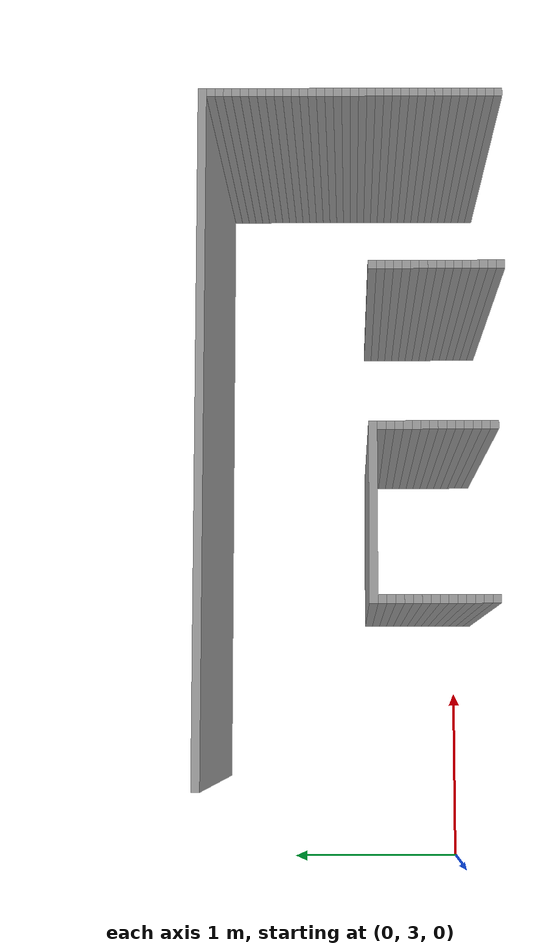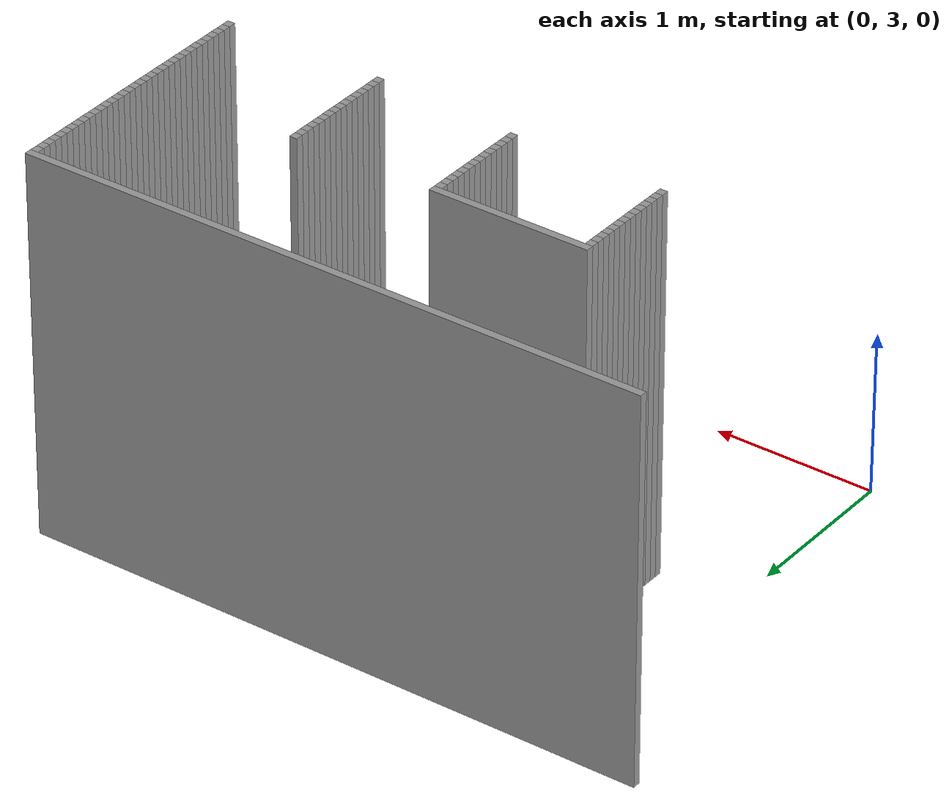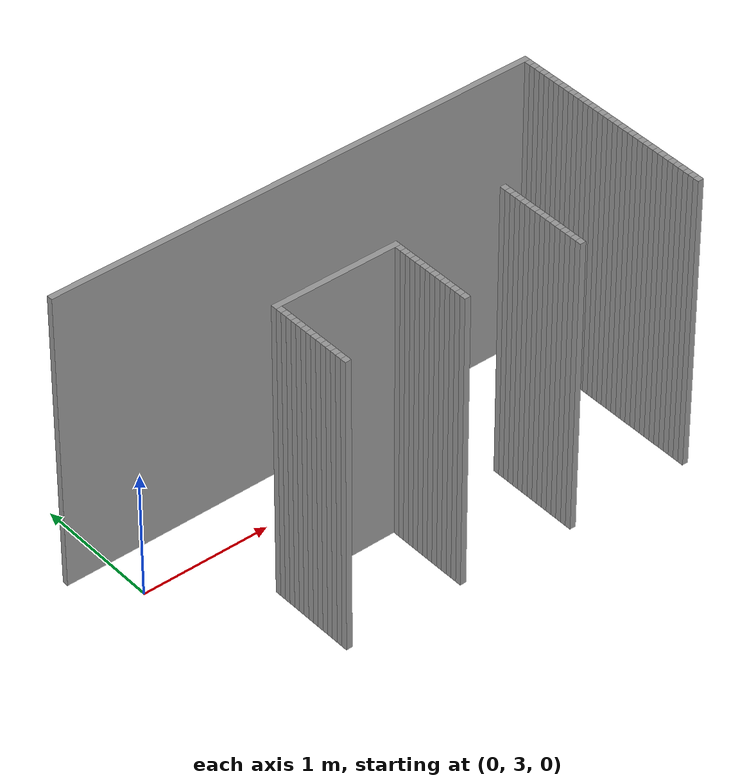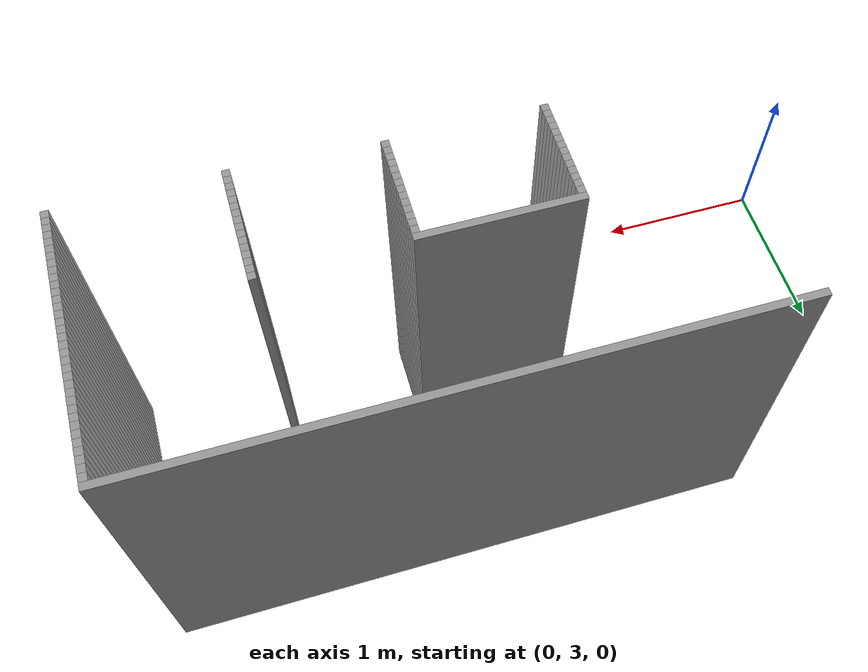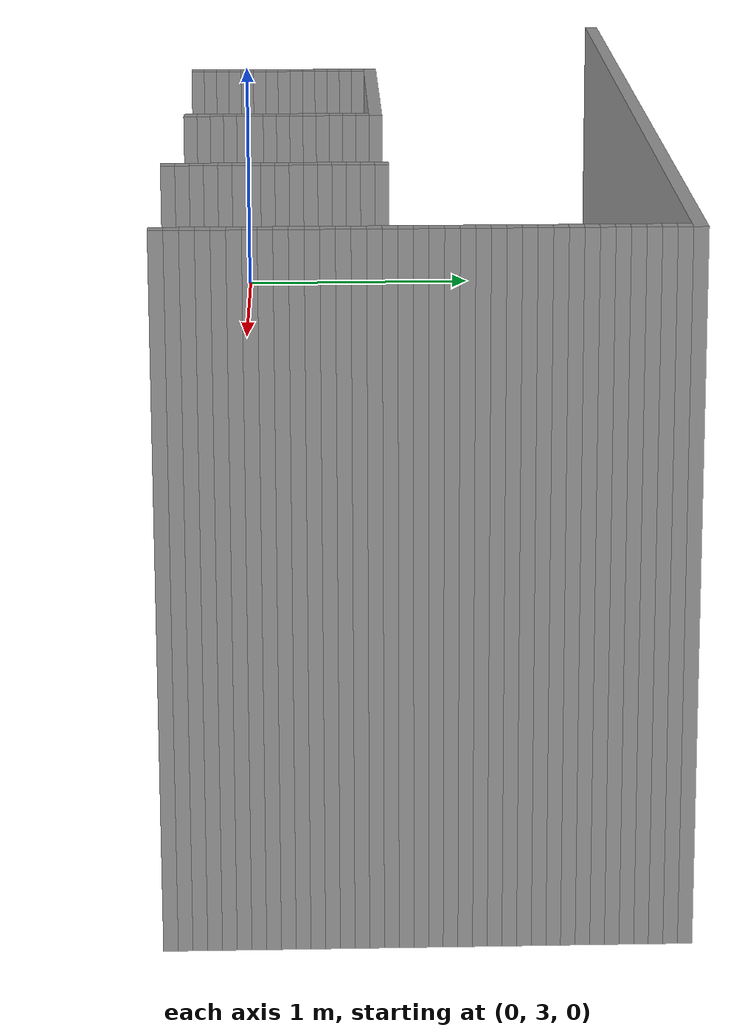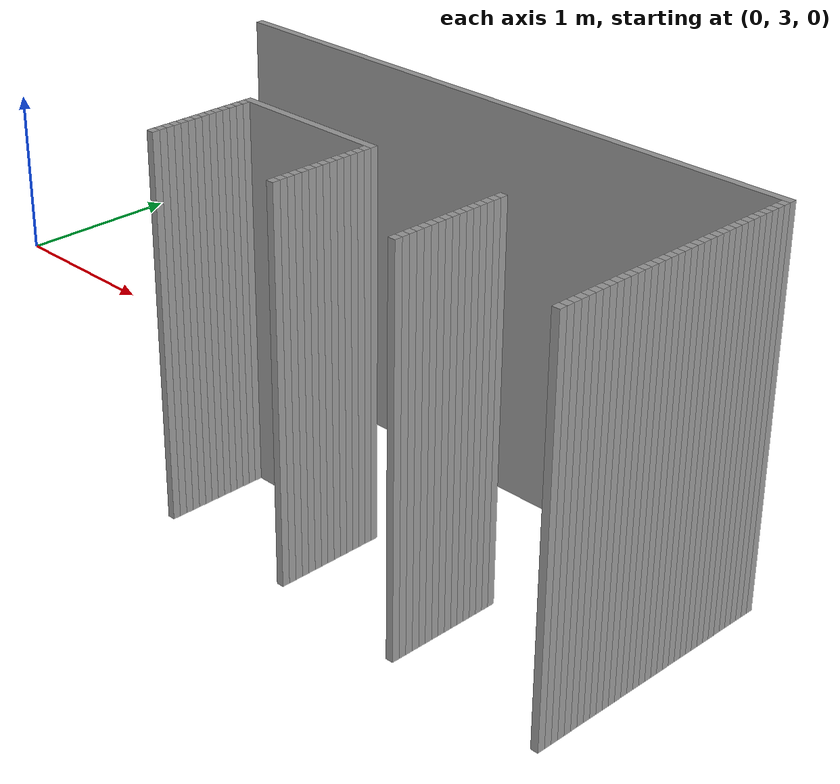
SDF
<sdf version="1.6">
 <model name="turtlebot3_rooms">
  <link name="Wall_129">
   <collision name="Wall_129_Collision"><geometry><box><size>0.05 0.05 2.5</size></box></geometry></collision>
   <visual name="Wall_129_Visual">
    <geometry><box><size>0.05 0.05 2.5</size></box></geometry>
    <material>
     <script><uri>file://media/materials/scripts/gazebo.material</uri><name>Gazebo/Grey</name></script>
     <ambient>1 1 1 1</ambient>
    </material>
   </visual>
   <pose>3.475 2.775 0 0 0 0</pose>
  </link>
  <link name="Wall_130">
   <collision name="Wall_130_Collision"><geometry><box><size>0.05 0.05 2.5</size></box></geometry></collision>
   <visual name="Wall_130_Visual">
    <geometry><box><size>0.05 0.05 2.5</size></box></geometry>
    <material>
     <script><uri>file://media/materials/scripts/gazebo.material</uri><name>Gazebo/Grey</name></script>
     <ambient>1 1 1 1</ambient>
    </material>
   </visual>
   <pose>4.525 2.775 0 0 0 0</pose>
  </link>
  <link name="Wall_132">
   <collision name="Wall_132_Collision"><geometry><box><size>0.05 0.05 2.5</size></box></geometry></collision>
   <visual name="Wall_132_Visual">
    <geometry><box><size>0.05 0.05 2.5</size></box></geometry>
    <material>
     <script><uri>file://media/materials/scripts/gazebo.material</uri><name>Gazebo/Grey</name></script>
     <ambient>1 1 1 1</ambient>
    </material>
   </visual>
   <pose>1.525 2.825 0 0 0 0</pose>
  </link>
  <link name="Wall_133">
   <collision name="Wall_133_Collision"><geometry><box><size>0.05 0.05 2.5</size></box></geometry></collision>
   <visual name="Wall_133_Visual">
    <geometry><box><size>0.05 0.05 2.5</size></box></geometry>
    <material>
     <script><uri>file://media/materials/scripts/gazebo.material</uri><name>Gazebo/Grey</name></script>
     <ambient>1 1 1 1</ambient>
    </material>
   </visual>
   <pose>2.525 2.825 0 0 0 0</pose>
  </link>
  <link name="Wall_134">
   <collision name="Wall_134_Collision"><geometry><box><size>0.05 0.05 2.5</size></box></geometry></collision>
   <visual name="Wall_134_Visual">
    <geometry><box><size>0.05 0.05 2.5</size></box></geometry>
    <material>
     <script><uri>file://media/materials/scripts/gazebo.material</uri><name>Gazebo/Grey</name></script>
     <ambient>1 1 1 1</ambient>
    </material>
   </visual>
   <pose>3.475 2.825 0 0 0 0</pose>
  </link>
  <link name="Wall_135">
   <collision name="Wall_135_Collision"><geometry><box><size>0.05 0.05 2.5</size></box></geometry></collision>
   <visual name="Wall_135_Visual">
    <geometry><box><size>0.05 0.05 2.5</size></box></geometry>
    <material>
     <script><uri>file://media/materials/scripts/gazebo.material</uri><name>Gazebo/Grey</name></script>
     <ambient>1 1 1 1</ambient>
    </material>
   </visual>
   <pose>4.525 2.825 0 0 0 0</pose>
  </link>
  <link name="Wall_137">
   <collision name="Wall_137_Collision"><geometry><box><size>0.05 0.05 2.5</size></box></geometry></collision>
   <visual name="Wall_137_Visual">
    <geometry><box><size>0.05 0.05 2.5</size></box></geometry>
    <material>
     <script><uri>file://media/materials/scripts/gazebo.material</uri><name>Gazebo/Grey</name></script>
     <ambient>1 1 1 1</ambient>
    </material>
   </visual>
   <pose>1.525 2.875 0 0 0 0</pose>
  </link>
  <link name="Wall_138">
   <collision name="Wall_138_Collision"><geometry><box><size>0.05 0.05 2.5</size></box></geometry></collision>
   <visual name="Wall_138_Visual">
    <geometry><box><size>0.05 0.05 2.5</size></box></geometry>
    <material>
     <script><uri>file://media/materials/scripts/gazebo.material</uri><name>Gazebo/Grey</name></script>
     <ambient>1 1 1 1</ambient>
    </material>
   </visual>
   <pose>2.525 2.875 0 0 0 0</pose>
  </link>
  <link name="Wall_139">
   <collision name="Wall_139_Collision"><geometry><box><size>0.05 0.05 2.5</size></box></geometry></collision>
   <visual name="Wall_139_Visual">
    <geometry><box><size>0.05 0.05 2.5</size></box></geometry>
    <material>
     <script><uri>file://media/materials/scripts/gazebo.material</uri><name>Gazebo/Grey</name></script>
     <ambient>1 1 1 1</ambient>
    </material>
   </visual>
   <pose>3.475 2.875 0 0 0 0</pose>
  </link>
  <link name="Wall_140">
   <collision name="Wall_140_Collision"><geometry><box><size>0.05 0.05 2.5</size></box></geometry></collision>
   <visual name="Wall_140_Visual">
    <geometry><box><size>0.05 0.05 2.5</size></box></geometry>
    <material>
     <script><uri>file://media/materials/scripts/gazebo.material</uri><name>Gazebo/Grey</name></script>
     <ambient>1 1 1 1</ambient>
    </material>
   </visual>
   <pose>4.525 2.875 0 0 0 0</pose>
  </link>
  <link name="Wall_142">
   <collision name="Wall_142_Collision"><geometry><box><size>0.05 0.05 2.5</size></box></geometry></collision>
   <visual name="Wall_142_Visual">
    <geometry><box><size>0.05 0.05 2.5</size></box></geometry>
    <material>
     <script><uri>file://media/materials/scripts/gazebo.material</uri><name>Gazebo/Grey</name></script>
     <ambient>1 1 1 1</ambient>
    </material>
   </visual>
   <pose>1.525 2.925 0 0 0 0</pose>
  </link>
  <link name="Wall_143">
   <collision name="Wall_143_Collision"><geometry><box><size>0.05 0.05 2.5</size></box></geometry></collision>
   <visual name="Wall_143_Visual">
    <geometry><box><size>0.05 0.05 2.5</size></box></geometry>
    <material>
     <script><uri>file://media/materials/scripts/gazebo.material</uri><name>Gazebo/Grey</name></script>
     <ambient>1 1 1 1</ambient>
    </material>
   </visual>
   <pose>2.525 2.925 0 0 0 0</pose>
  </link>
  <link name="Wall_144">
   <collision name="Wall_144_Collision"><geometry><box><size>0.05 0.05 2.5</size></box></geometry></collision>
   <visual name="Wall_144_Visual">
    <geometry><box><size>0.05 0.05 2.5</size></box></geometry>
    <material>
     <script><uri>file://media/materials/scripts/gazebo.material</uri><name>Gazebo/Grey</name></script>
     <ambient>1 1 1 1</ambient>
    </material>
   </visual>
   <pose>3.475 2.925 0 0 0 0</pose>
  </link>
  <link name="Wall_145">
   <collision name="Wall_145_Collision"><geometry><box><size>0.05 0.05 2.5</size></box></geometry></collision>
   <visual name="Wall_145_Visual">
    <geometry><box><size>0.05 0.05 2.5</size></box></geometry>
    <material>
     <script><uri>file://media/materials/scripts/gazebo.material</uri><name>Gazebo/Grey</name></script>
     <ambient>1 1 1 1</ambient>
    </material>
   </visual>
   <pose>4.525 2.925 0 0 0 0</pose>
  </link>
  <link name="Wall_147">
   <collision name="Wall_147_Collision"><geometry><box><size>0.05 0.05 2.5</size></box></geometry></collision>
   <visual name="Wall_147_Visual">
    <geometry><box><size>0.05 0.05 2.5</size></box></geometry>
    <material>
     <script><uri>file://media/materials/scripts/gazebo.material</uri><name>Gazebo/Grey</name></script>
     <ambient>1 1 1 1</ambient>
    </material>
   </visual>
   <pose>1.525 2.975 0 0 0 0</pose>
  </link>
  <link name="Wall_148">
   <collision name="Wall_148_Collision"><geometry><box><size>0.05 0.05 2.5</size></box></geometry></collision>
   <visual name="Wall_148_Visual">
    <geometry><box><size>0.05 0.05 2.5</size></box></geometry>
    <material>
     <script><uri>file://media/materials/scripts/gazebo.material</uri><name>Gazebo/Grey</name></script>
     <ambient>1 1 1 1</ambient>
    </material>
   </visual>
   <pose>2.525 2.975 0 0 0 0</pose>
  </link>
  <link name="Wall_149">
   <collision name="Wall_149_Collision"><geometry><box><size>0.05 0.05 2.5</size></box></geometry></collision>
   <visual name="Wall_149_Visual">
    <geometry><box><size>0.05 0.05 2.5</size></box></geometry>
    <material>
     <script><uri>file://media/materials/scripts/gazebo.material</uri><name>Gazebo/Grey</name></script>
     <ambient>1 1 1 1</ambient>
    </material>
   </visual>
   <pose>3.475 2.975 0 0 0 0</pose>
  </link>
  <link name="Wall_150">
   <collision name="Wall_150_Collision"><geometry><box><size>0.05 0.05 2.5</size></box></geometry></collision>
   <visual name="Wall_150_Visual">
    <geometry><box><size>0.05 0.05 2.5</size></box></geometry>
    <material>
     <script><uri>file://media/materials/scripts/gazebo.material</uri><name>Gazebo/Grey</name></script>
     <ambient>1 1 1 1</ambient>
    </material>
   </visual>
   <pose>4.525 2.975 0 0 0 0</pose>
  </link>
  <link name="Wall_152">
   <collision name="Wall_152_Collision"><geometry><box><size>0.05 0.05 2.5</size></box></geometry></collision>
   <visual name="Wall_152_Visual">
    <geometry><box><size>0.05 0.05 2.5</size></box></geometry>
    <material>
     <script><uri>file://media/materials/scripts/gazebo.material</uri><name>Gazebo/Grey</name></script>
     <ambient>1 1 1 1</ambient>
    </material>
   </visual>
   <pose>1.525 3.025 0 0 0 0</pose>
  </link>
  <link name="Wall_153">
   <collision name="Wall_153_Collision"><geometry><box><size>0.05 0.05 2.5</size></box></geometry></collision>
   <visual name="Wall_153_Visual">
    <geometry><box><size>0.05 0.05 2.5</size></box></geometry>
    <material>
     <script><uri>file://media/materials/scripts/gazebo.material</uri><name>Gazebo/Grey</name></script>
     <ambient>1 1 1 1</ambient>
    </material>
   </visual>
   <pose>2.525 3.025 0 0 0 0</pose>
  </link>
  <link name="Wall_154">
   <collision name="Wall_154_Collision"><geometry><box><size>0.05 0.05 2.5</size></box></geometry></collision>
   <visual name="Wall_154_Visual">
    <geometry><box><size>0.05 0.05 2.5</size></box></geometry>
    <material>
     <script><uri>file://media/materials/scripts/gazebo.material</uri><name>Gazebo/Grey</name></script>
     <ambient>1 1 1 1</ambient>
    </material>
   </visual>
   <pose>3.475 3.025 0 0 0 0</pose>
  </link>
  <link name="Wall_155">
   <collision name="Wall_155_Collision"><geometry><box><size>0.05 0.05 2.5</size></box></geometry></collision>
   <visual name="Wall_155_Visual">
    <geometry><box><size>0.05 0.05 2.5</size></box></geometry>
    <material>
     <script><uri>file://media/materials/scripts/gazebo.material</uri><name>Gazebo/Grey</name></script>
     <ambient>1 1 1 1</ambient>
    </material>
   </visual>
   <pose>4.525 3.025 0 0 0 0</pose>
  </link>
  <link name="Wall_157">
   <collision name="Wall_157_Collision"><geometry><box><size>0.05 0.05 2.5</size></box></geometry></collision>
   <visual name="Wall_157_Visual">
    <geometry><box><size>0.05 0.05 2.5</size></box></geometry>
    <material>
     <script><uri>file://media/materials/scripts/gazebo.material</uri><name>Gazebo/Grey</name></script>
     <ambient>1 1 1 1</ambient>
    </material>
   </visual>
   <pose>1.525 3.075 0 0 0 0</pose>
  </link>
  <link name="Wall_158">
   <collision name="Wall_158_Collision"><geometry><box><size>0.05 0.05 2.5</size></box></geometry></collision>
   <visual name="Wall_158_Visual">
    <geometry><box><size>0.05 0.05 2.5</size></box></geometry>
    <material>
     <script><uri>file://media/materials/scripts/gazebo.material</uri><name>Gazebo/Grey</name></script>
     <ambient>1 1 1 1</ambient>
    </material>
   </visual>
   <pose>2.525 3.075 0 0 0 0</pose>
  </link>
  <link name="Wall_159">
   <collision name="Wall_159_Collision"><geometry><box><size>0.05 0.05 2.5</size></box></geometry></collision>
   <visual name="Wall_159_Visual">
    <geometry><box><size>0.05 0.05 2.5</size></box></geometry>
    <material>
     <script><uri>file://media/materials/scripts/gazebo.material</uri><name>Gazebo/Grey</name></script>
     <ambient>1 1 1 1</ambient>
    </material>
   </visual>
   <pose>3.475 3.075 0 0 0 0</pose>
  </link>
  <link name="Wall_160">
   <collision name="Wall_160_Collision"><geometry><box><size>0.05 0.05 2.5</size></box></geometry></collision>
   <visual name="Wall_160_Visual">
    <geometry><box><size>0.05 0.05 2.5</size></box></geometry>
    <material>
     <script><uri>file://media/materials/scripts/gazebo.material</uri><name>Gazebo/Grey</name></script>
     <ambient>1 1 1 1</ambient>
    </material>
   </visual>
   <pose>4.525 3.075 0 0 0 0</pose>
  </link>
  <link name="Wall_162">
   <collision name="Wall_162_Collision"><geometry><box><size>0.05 0.05 2.5</size></box></geometry></collision>
   <visual name="Wall_162_Visual">
    <geometry><box><size>0.05 0.05 2.5</size></box></geometry>
    <material>
     <script><uri>file://media/materials/scripts/gazebo.material</uri><name>Gazebo/Grey</name></script>
     <ambient>1 1 1 1</ambient>
    </material>
   </visual>
   <pose>1.525 3.125 0 0 0 0</pose>
  </link>
  <link name="Wall_163">
   <collision name="Wall_163_Collision"><geometry><box><size>0.05 0.05 2.5</size></box></geometry></collision>
   <visual name="Wall_163_Visual">
    <geometry><box><size>0.05 0.05 2.5</size></box></geometry>
    <material>
     <script><uri>file://media/materials/scripts/gazebo.material</uri><name>Gazebo/Grey</name></script>
     <ambient>1 1 1 1</ambient>
    </material>
   </visual>
   <pose>2.525 3.125 0 0 0 0</pose>
  </link>
  <link name="Wall_164">
   <collision name="Wall_164_Collision"><geometry><box><size>0.05 0.05 2.5</size></box></geometry></collision>
   <visual name="Wall_164_Visual">
    <geometry><box><size>0.05 0.05 2.5</size></box></geometry>
    <material>
     <script><uri>file://media/materials/scripts/gazebo.material</uri><name>Gazebo/Grey</name></script>
     <ambient>1 1 1 1</ambient>
    </material>
   </visual>
   <pose>3.475 3.125 0 0 0 0</pose>
  </link>
  <link name="Wall_165">
   <collision name="Wall_165_Collision"><geometry><box><size>0.05 0.05 2.5</size></box></geometry></collision>
   <visual name="Wall_165_Visual">
    <geometry><box><size>0.05 0.05 2.5</size></box></geometry>
    <material>
     <script><uri>file://media/materials/scripts/gazebo.material</uri><name>Gazebo/Grey</name></script>
     <ambient>1 1 1 1</ambient>
    </material>
   </visual>
   <pose>4.525 3.125 0 0 0 0</pose>
  </link>
  <link name="Wall_167">
   <collision name="Wall_167_Collision"><geometry><box><size>0.05 0.05 2.5</size></box></geometry></collision>
   <visual name="Wall_167_Visual">
    <geometry><box><size>0.05 0.05 2.5</size></box></geometry>
    <material>
     <script><uri>file://media/materials/scripts/gazebo.material</uri><name>Gazebo/Grey</name></script>
     <ambient>1 1 1 1</ambient>
    </material>
   </visual>
   <pose>1.525 3.175 0 0 0 0</pose>
  </link>
  <link name="Wall_168">
   <collision name="Wall_168_Collision"><geometry><box><size>0.05 0.05 2.5</size></box></geometry></collision>
   <visual name="Wall_168_Visual">
    <geometry><box><size>0.05 0.05 2.5</size></box></geometry>
    <material>
     <script><uri>file://media/materials/scripts/gazebo.material</uri><name>Gazebo/Grey</name></script>
     <ambient>1 1 1 1</ambient>
    </material>
   </visual>
   <pose>2.525 3.175 0 0 0 0</pose>
  </link>
  <link name="Wall_169">
   <collision name="Wall_169_Collision"><geometry><box><size>0.05 0.05 2.5</size></box></geometry></collision>
   <visual name="Wall_169_Visual">
    <geometry><box><size>0.05 0.05 2.5</size></box></geometry>
    <material>
     <script><uri>file://media/materials/scripts/gazebo.material</uri><name>Gazebo/Grey</name></script>
     <ambient>1 1 1 1</ambient>
    </material>
   </visual>
   <pose>3.475 3.175 0 0 0 0</pose>
  </link>
  <link name="Wall_170">
   <collision name="Wall_170_Collision"><geometry><box><size>0.05 0.05 2.5</size></box></geometry></collision>
   <visual name="Wall_170_Visual">
    <geometry><box><size>0.05 0.05 2.5</size></box></geometry>
    <material>
     <script><uri>file://media/materials/scripts/gazebo.material</uri><name>Gazebo/Grey</name></script>
     <ambient>1 1 1 1</ambient>
    </material>
   </visual>
   <pose>4.525 3.175 0 0 0 0</pose>
  </link>
  <link name="Wall_172">
   <collision name="Wall_172_Collision"><geometry><box><size>0.05 0.05 2.5</size></box></geometry></collision>
   <visual name="Wall_172_Visual">
    <geometry><box><size>0.05 0.05 2.5</size></box></geometry>
    <material>
     <script><uri>file://media/materials/scripts/gazebo.material</uri><name>Gazebo/Grey</name></script>
     <ambient>1 1 1 1</ambient>
    </material>
   </visual>
   <pose>1.525 3.225 0 0 0 0</pose>
  </link>
  <link name="Wall_173">
   <collision name="Wall_173_Collision"><geometry><box><size>0.05 0.05 2.5</size></box></geometry></collision>
   <visual name="Wall_173_Visual">
    <geometry><box><size>0.05 0.05 2.5</size></box></geometry>
    <material>
     <script><uri>file://media/materials/scripts/gazebo.material</uri><name>Gazebo/Grey</name></script>
     <ambient>1 1 1 1</ambient>
    </material>
   </visual>
   <pose>2.525 3.225 0 0 0 0</pose>
  </link>
  <link name="Wall_174">
   <collision name="Wall_174_Collision"><geometry><box><size>0.05 0.05 2.5</size></box></geometry></collision>
   <visual name="Wall_174_Visual">
    <geometry><box><size>0.05 0.05 2.5</size></box></geometry>
    <material>
     <script><uri>file://media/materials/scripts/gazebo.material</uri><name>Gazebo/Grey</name></script>
     <ambient>1 1 1 1</ambient>
    </material>
   </visual>
   <pose>3.475 3.225 0 0 0 0</pose>
  </link>
  <link name="Wall_175">
   <collision name="Wall_175_Collision"><geometry><box><size>0.05 0.05 2.5</size></box></geometry></collision>
   <visual name="Wall_175_Visual">
    <geometry><box><size>0.05 0.05 2.5</size></box></geometry>
    <material>
     <script><uri>file://media/materials/scripts/gazebo.material</uri><name>Gazebo/Grey</name></script>
     <ambient>1 1 1 1</ambient>
    </material>
   </visual>
   <pose>4.525 3.225 0 0 0 0</pose>
  </link>
  <link name="Wall_177">
   <collision name="Wall_177_Collision"><geometry><box><size>0.05 0.05 2.5</size></box></geometry></collision>
   <visual name="Wall_177_Visual">
    <geometry><box><size>0.05 0.05 2.5</size></box></geometry>
    <material>
     <script><uri>file://media/materials/scripts/gazebo.material</uri><name>Gazebo/Grey</name></script>
     <ambient>1 1 1 1</ambient>
    </material>
   </visual>
   <pose>1.525 3.275 0 0 0 0</pose>
  </link>
  <link name="Wall_178">
   <collision name="Wall_178_Collision"><geometry><box><size>0.05 0.05 2.5</size></box></geometry></collision>
   <visual name="Wall_178_Visual">
    <geometry><box><size>0.05 0.05 2.5</size></box></geometry>
    <material>
     <script><uri>file://media/materials/scripts/gazebo.material</uri><name>Gazebo/Grey</name></script>
     <ambient>1 1 1 1</ambient>
    </material>
   </visual>
   <pose>2.525 3.275 0 0 0 0</pose>
  </link>
  <link name="Wall_179">
   <collision name="Wall_179_Collision"><geometry><box><size>0.05 0.05 2.5</size></box></geometry></collision>
   <visual name="Wall_179_Visual">
    <geometry><box><size>0.05 0.05 2.5</size></box></geometry>
    <material>
     <script><uri>file://media/materials/scripts/gazebo.material</uri><name>Gazebo/Grey</name></script>
     <ambient>1 1 1 1</ambient>
    </material>
   </visual>
   <pose>3.475 3.275 0 0 0 0</pose>
  </link>
  <link name="Wall_180">
   <collision name="Wall_180_Collision"><geometry><box><size>0.05 0.05 2.5</size></box></geometry></collision>
   <visual name="Wall_180_Visual">
    <geometry><box><size>0.05 0.05 2.5</size></box></geometry>
    <material>
     <script><uri>file://media/materials/scripts/gazebo.material</uri><name>Gazebo/Grey</name></script>
     <ambient>1 1 1 1</ambient>
    </material>
   </visual>
   <pose>4.525 3.275 0 0 0 0</pose>
  </link>
  <link name="Wall_182">
   <collision name="Wall_182_Collision"><geometry><box><size>0.05 0.05 2.5</size></box></geometry></collision>
   <visual name="Wall_182_Visual">
    <geometry><box><size>0.05 0.05 2.5</size></box></geometry>
    <material>
     <script><uri>file://media/materials/scripts/gazebo.material</uri><name>Gazebo/Grey</name></script>
     <ambient>1 1 1 1</ambient>
    </material>
   </visual>
   <pose>1.525 3.325 0 0 0 0</pose>
  </link>
  <link name="Wall_183">
   <collision name="Wall_183_Collision"><geometry><box><size>0.05 0.05 2.5</size></box></geometry></collision>
   <visual name="Wall_183_Visual">
    <geometry><box><size>0.05 0.05 2.5</size></box></geometry>
    <material>
     <script><uri>file://media/materials/scripts/gazebo.material</uri><name>Gazebo/Grey</name></script>
     <ambient>1 1 1 1</ambient>
    </material>
   </visual>
   <pose>2.525 3.325 0 0 0 0</pose>
  </link>
  <link name="Wall_184">
   <collision name="Wall_184_Collision"><geometry><box><size>0.05 0.05 2.5</size></box></geometry></collision>
   <visual name="Wall_184_Visual">
    <geometry><box><size>0.05 0.05 2.5</size></box></geometry>
    <material>
     <script><uri>file://media/materials/scripts/gazebo.material</uri><name>Gazebo/Grey</name></script>
     <ambient>1 1 1 1</ambient>
    </material>
   </visual>
   <pose>3.475 3.325 0 0 0 0</pose>
  </link>
  <link name="Wall_185">
   <collision name="Wall_185_Collision"><geometry><box><size>0.05 0.05 2.5</size></box></geometry></collision>
   <visual name="Wall_185_Visual">
    <geometry><box><size>0.05 0.05 2.5</size></box></geometry>
    <material>
     <script><uri>file://media/materials/scripts/gazebo.material</uri><name>Gazebo/Grey</name></script>
     <ambient>1 1 1 1</ambient>
    </material>
   </visual>
   <pose>4.525 3.325 0 0 0 0</pose>
  </link>
  <link name="Wall_187">
   <collision name="Wall_187_Collision"><geometry><box><size>0.05 0.05 2.5</size></box></geometry></collision>
   <visual name="Wall_187_Visual">
    <geometry><box><size>0.05 0.05 2.5</size></box></geometry>
    <material>
     <script><uri>file://media/materials/scripts/gazebo.material</uri><name>Gazebo/Grey</name></script>
     <ambient>1 1 1 1</ambient>
    </material>
   </visual>
   <pose>1.525 3.375 0 0 0 0</pose>
  </link>
  <link name="Wall_188">
   <collision name="Wall_188_Collision"><geometry><box><size>0.05 0.05 2.5</size></box></geometry></collision>
   <visual name="Wall_188_Visual">
    <geometry><box><size>0.05 0.05 2.5</size></box></geometry>
    <material>
     <script><uri>file://media/materials/scripts/gazebo.material</uri><name>Gazebo/Grey</name></script>
     <ambient>1 1 1 1</ambient>
    </material>
   </visual>
   <pose>2.525 3.375 0 0 0 0</pose>
  </link>
  <link name="Wall_189">
   <collision name="Wall_189_Collision"><geometry><box><size>0.05 0.05 2.5</size></box></geometry></collision>
   <visual name="Wall_189_Visual">
    <geometry><box><size>0.05 0.05 2.5</size></box></geometry>
    <material>
     <script><uri>file://media/materials/scripts/gazebo.material</uri><name>Gazebo/Grey</name></script>
     <ambient>1 1 1 1</ambient>
    </material>
   </visual>
   <pose>3.475 3.375 0 0 0 0</pose>
  </link>
  <link name="Wall_190">
   <collision name="Wall_190_Collision"><geometry><box><size>0.05 0.05 2.5</size></box></geometry></collision>
   <visual name="Wall_190_Visual">
    <geometry><box><size>0.05 0.05 2.5</size></box></geometry>
    <material>
     <script><uri>file://media/materials/scripts/gazebo.material</uri><name>Gazebo/Grey</name></script>
     <ambient>1 1 1 1</ambient>
    </material>
   </visual>
   <pose>4.525 3.375 0 0 0 0</pose>
  </link>
  <link name="Wall_192">
   <collision name="Wall_192_Collision"><geometry><box><size>0.05 0.05 2.5</size></box></geometry></collision>
   <visual name="Wall_192_Visual">
    <geometry><box><size>0.05 0.05 2.5</size></box></geometry>
    <material>
     <script><uri>file://media/materials/scripts/gazebo.material</uri><name>Gazebo/Grey</name></script>
     <ambient>1 1 1 1</ambient>
    </material>
   </visual>
   <pose>1.525 3.425 0 0 0 0</pose>
  </link>
  <link name="Wall_193">
   <collision name="Wall_193_Collision"><geometry><box><size>0.05 0.05 2.5</size></box></geometry></collision>
   <visual name="Wall_193_Visual">
    <geometry><box><size>0.05 0.05 2.5</size></box></geometry>
    <material>
     <script><uri>file://media/materials/scripts/gazebo.material</uri><name>Gazebo/Grey</name></script>
     <ambient>1 1 1 1</ambient>
    </material>
   </visual>
   <pose>2.525 3.425 0 0 0 0</pose>
  </link>
  <link name="Wall_194">
   <collision name="Wall_194_Collision"><geometry><box><size>0.05 0.05 2.5</size></box></geometry></collision>
   <visual name="Wall_194_Visual">
    <geometry><box><size>0.05 0.05 2.5</size></box></geometry>
    <material>
     <script><uri>file://media/materials/scripts/gazebo.material</uri><name>Gazebo/Grey</name></script>
     <ambient>1 1 1 1</ambient>
    </material>
   </visual>
   <pose>3.475 3.425 0 0 0 0</pose>
  </link>
  <link name="Wall_195">
   <collision name="Wall_195_Collision"><geometry><box><size>0.05 0.05 2.5</size></box></geometry></collision>
   <visual name="Wall_195_Visual">
    <geometry><box><size>0.05 0.05 2.5</size></box></geometry>
    <material>
     <script><uri>file://media/materials/scripts/gazebo.material</uri><name>Gazebo/Grey</name></script>
     <ambient>1 1 1 1</ambient>
    </material>
   </visual>
   <pose>4.525 3.425 0 0 0 0</pose>
  </link>
  <link name="Wall_197">
   <collision name="Wall_197_Collision"><geometry><box><size>0.05 0.05 2.5</size></box></geometry></collision>
   <visual name="Wall_197_Visual">
    <geometry><box><size>0.05 0.05 2.5</size></box></geometry>
    <material>
     <script><uri>file://media/materials/scripts/gazebo.material</uri><name>Gazebo/Grey</name></script>
     <ambient>1 1 1 1</ambient>
    </material>
   </visual>
   <pose>1.525 3.475 0 0 0 0</pose>
  </link>
  <link name="Wall_198">
   <collision name="Wall_198_Collision"><geometry><box><size>0.05 0.05 2.5</size></box></geometry></collision>
   <visual name="Wall_198_Visual">
    <geometry><box><size>0.05 0.05 2.5</size></box></geometry>
    <material>
     <script><uri>file://media/materials/scripts/gazebo.material</uri><name>Gazebo/Grey</name></script>
     <ambient>1 1 1 1</ambient>
    </material>
   </visual>
   <pose>2.525 3.475 0 0 0 0</pose>
  </link>
  <link name="Wall_199">
   <collision name="Wall_199_Collision"><geometry><box><size>0.05 0.05 2.5</size></box></geometry></collision>
   <visual name="Wall_199_Visual">
    <geometry><box><size>0.05 0.05 2.5</size></box></geometry>
    <material>
     <script><uri>file://media/materials/scripts/gazebo.material</uri><name>Gazebo/Grey</name></script>
     <ambient>1 1 1 1</ambient>
    </material>
   </visual>
   <pose>3.475 3.475 0 0 0 0</pose>
  </link>
  <link name="Wall_200">
   <collision name="Wall_200_Collision"><geometry><box><size>0.05 0.05 2.5</size></box></geometry></collision>
   <visual name="Wall_200_Visual">
    <geometry><box><size>0.05 0.05 2.5</size></box></geometry>
    <material>
     <script><uri>file://media/materials/scripts/gazebo.material</uri><name>Gazebo/Grey</name></script>
     <ambient>1 1 1 1</ambient>
    </material>
   </visual>
   <pose>4.525 3.475 0 0 0 0</pose>
  </link>
  <link name="Wall_202">
   <collision name="Wall_202_Collision"><geometry><box><size>1.05 0.05 2.5</size></box></geometry></collision>
   <visual name="Wall_202_Visual">
    <geometry><box><size>1.05 0.05 2.5</size></box></geometry>
    <material>
     <script><uri>file://media/materials/scripts/gazebo.material</uri><name>Gazebo/Grey</name></script>
     <ambient>1 1 1 1</ambient>
    </material>
   </visual>
   <pose>2.025 3.525 0 0 0 0</pose>
  </link>
  <link name="Wall_203">
   <collision name="Wall_203_Collision"><geometry><box><size>0.05 0.05 2.5</size></box></geometry></collision>
   <visual name="Wall_203_Visual">
    <geometry><box><size>0.05 0.05 2.5</size></box></geometry>
    <material>
     <script><uri>file://media/materials/scripts/gazebo.material</uri><name>Gazebo/Grey</name></script>
     <ambient>1 1 1 1</ambient>
    </material>
   </visual>
   <pose>3.475 3.525 0 0 0 0</pose>
  </link>
  <link name="Wall_204">
   <collision name="Wall_204_Collision"><geometry><box><size>0.05 0.05 2.5</size></box></geometry></collision>
   <visual name="Wall_204_Visual">
    <geometry><box><size>0.05 0.05 2.5</size></box></geometry>
    <material>
     <script><uri>file://media/materials/scripts/gazebo.material</uri><name>Gazebo/Grey</name></script>
     <ambient>1 1 1 1</ambient>
    </material>
   </visual>
   <pose>4.525 3.525 0 0 0 0</pose>
  </link>
  <link name="Wall_206">
   <collision name="Wall_206_Collision"><geometry><box><size>0.05 0.05 2.5</size></box></geometry></collision>
   <visual name="Wall_206_Visual">
    <geometry><box><size>0.05 0.05 2.5</size></box></geometry>
    <material>
     <script><uri>file://media/materials/scripts/gazebo.material</uri><name>Gazebo/Grey</name></script>
     <ambient>1 1 1 1</ambient>
    </material>
   </visual>
   <pose>4.525 3.575 0 0 0 0</pose>
  </link>
  <link name="Wall_208">
   <collision name="Wall_208_Collision"><geometry><box><size>0.05 0.05 2.5</size></box></geometry></collision>
   <visual name="Wall_208_Visual">
    <geometry><box><size>0.05 0.05 2.5</size></box></geometry>
    <material>
     <script><uri>file://media/materials/scripts/gazebo.material</uri><name>Gazebo/Grey</name></script>
     <ambient>1 1 1 1</ambient>
    </material>
   </visual>
   <pose>4.525 3.625 0 0 0 0</pose>
  </link>
  <link name="Wall_210">
   <collision name="Wall_210_Collision"><geometry><box><size>0.05 0.05 2.5</size></box></geometry></collision>
   <visual name="Wall_210_Visual">
    <geometry><box><size>0.05 0.05 2.5</size></box></geometry>
    <material>
     <script><uri>file://media/materials/scripts/gazebo.material</uri><name>Gazebo/Grey</name></script>
     <ambient>1 1 1 1</ambient>
    </material>
   </visual>
   <pose>4.525 3.675 0 0 0 0</pose>
  </link>
  <link name="Wall_212">
   <collision name="Wall_212_Collision"><geometry><box><size>0.05 0.05 2.5</size></box></geometry></collision>
   <visual name="Wall_212_Visual">
    <geometry><box><size>0.05 0.05 2.5</size></box></geometry>
    <material>
     <script><uri>file://media/materials/scripts/gazebo.material</uri><name>Gazebo/Grey</name></script>
     <ambient>1 1 1 1</ambient>
    </material>
   </visual>
   <pose>4.525 3.725 0 0 0 0</pose>
  </link>
  <link name="Wall_214">
   <collision name="Wall_214_Collision"><geometry><box><size>0.05 0.05 2.5</size></box></geometry></collision>
   <visual name="Wall_214_Visual">
    <geometry><box><size>0.05 0.05 2.5</size></box></geometry>
    <material>
     <script><uri>file://media/materials/scripts/gazebo.material</uri><name>Gazebo/Grey</name></script>
     <ambient>1 1 1 1</ambient>
    </material>
   </visual>
   <pose>4.525 3.775 0 0 0 0</pose>
  </link>
  <link name="Wall_216">
   <collision name="Wall_216_Collision"><geometry><box><size>0.05 0.05 2.5</size></box></geometry></collision>
   <visual name="Wall_216_Visual">
    <geometry><box><size>0.05 0.05 2.5</size></box></geometry>
    <material>
     <script><uri>file://media/materials/scripts/gazebo.material</uri><name>Gazebo/Grey</name></script>
     <ambient>1 1 1 1</ambient>
    </material>
   </visual>
   <pose>4.525 3.825 0 0 0 0</pose>
  </link>
  <link name="Wall_218">
   <collision name="Wall_218_Collision"><geometry><box><size>0.05 0.05 2.5</size></box></geometry></collision>
   <visual name="Wall_218_Visual">
    <geometry><box><size>0.05 0.05 2.5</size></box></geometry>
    <material>
     <script><uri>file://media/materials/scripts/gazebo.material</uri><name>Gazebo/Grey</name></script>
     <ambient>1 1 1 1</ambient>
    </material>
   </visual>
   <pose>4.525 3.875 0 0 0 0</pose>
  </link>
  <link name="Wall_220">
   <collision name="Wall_220_Collision"><geometry><box><size>0.05 0.05 2.5</size></box></geometry></collision>
   <visual name="Wall_220_Visual">
    <geometry><box><size>0.05 0.05 2.5</size></box></geometry>
    <material>
     <script><uri>file://media/materials/scripts/gazebo.material</uri><name>Gazebo/Grey</name></script>
     <ambient>1 1 1 1</ambient>
    </material>
   </visual>
   <pose>4.525 3.925 0 0 0 0</pose>
  </link>
  <link name="Wall_222">
   <collision name="Wall_222_Collision"><geometry><box><size>0.05 0.05 2.5</size></box></geometry></collision>
   <visual name="Wall_222_Visual">
    <geometry><box><size>0.05 0.05 2.5</size></box></geometry>
    <material>
     <script><uri>file://media/materials/scripts/gazebo.material</uri><name>Gazebo/Grey</name></script>
     <ambient>1 1 1 1</ambient>
    </material>
   </visual>
   <pose>4.525 3.975 0 0 0 0</pose>
  </link>
  <link name="Wall_224">
   <collision name="Wall_224_Collision"><geometry><box><size>0.05 0.05 2.5</size></box></geometry></collision>
   <visual name="Wall_224_Visual">
    <geometry><box><size>0.05 0.05 2.5</size></box></geometry>
    <material>
     <script><uri>file://media/materials/scripts/gazebo.material</uri><name>Gazebo/Grey</name></script>
     <ambient>1 1 1 1</ambient>
    </material>
   </visual>
   <pose>4.525 4.025 0 0 0 0</pose>
  </link>
  <link name="Wall_226">
   <collision name="Wall_226_Collision"><geometry><box><size>0.05 0.05 2.5</size></box></geometry></collision>
   <visual name="Wall_226_Visual">
    <geometry><box><size>0.05 0.05 2.5</size></box></geometry>
    <material>
     <script><uri>file://media/materials/scripts/gazebo.material</uri><name>Gazebo/Grey</name></script>
     <ambient>1 1 1 1</ambient>
    </material>
   </visual>
   <pose>4.525 4.075 0 0 0 0</pose>
  </link>
  <link name="Wall_228">
   <collision name="Wall_228_Collision"><geometry><box><size>0.05 0.05 2.5</size></box></geometry></collision>
   <visual name="Wall_228_Visual">
    <geometry><box><size>0.05 0.05 2.5</size></box></geometry>
    <material>
     <script><uri>file://media/materials/scripts/gazebo.material</uri><name>Gazebo/Grey</name></script>
     <ambient>1 1 1 1</ambient>
    </material>
   </visual>
   <pose>4.525 4.125 0 0 0 0</pose>
  </link>
  <link name="Wall_230">
   <collision name="Wall_230_Collision"><geometry><box><size>0.05 0.05 2.5</size></box></geometry></collision>
   <visual name="Wall_230_Visual">
    <geometry><box><size>0.05 0.05 2.5</size></box></geometry>
    <material>
     <script><uri>file://media/materials/scripts/gazebo.material</uri><name>Gazebo/Grey</name></script>
     <ambient>1 1 1 1</ambient>
    </material>
   </visual>
   <pose>4.525 4.175 0 0 0 0</pose>
  </link>
  <link name="Wall_232">
   <collision name="Wall_232_Collision"><geometry><box><size>0.05 0.05 2.5</size></box></geometry></collision>
   <visual name="Wall_232_Visual">
    <geometry><box><size>0.05 0.05 2.5</size></box></geometry>
    <material>
     <script><uri>file://media/materials/scripts/gazebo.material</uri><name>Gazebo/Grey</name></script>
     <ambient>1 1 1 1</ambient>
    </material>
   </visual>
   <pose>4.525 4.225 0 0 0 0</pose>
  </link>
  <link name="Wall_234">
   <collision name="Wall_234_Collision"><geometry><box><size>0.05 0.05 2.5</size></box></geometry></collision>
   <visual name="Wall_234_Visual">
    <geometry><box><size>0.05 0.05 2.5</size></box></geometry>
    <material>
     <script><uri>file://media/materials/scripts/gazebo.material</uri><name>Gazebo/Grey</name></script>
     <ambient>1 1 1 1</ambient>
    </material>
   </visual>
   <pose>4.525 4.275 0 0 0 0</pose>
  </link>
  <link name="Wall_236">
   <collision name="Wall_236_Collision"><geometry><box><size>0.05 0.05 2.5</size></box></geometry></collision>
   <visual name="Wall_236_Visual">
    <geometry><box><size>0.05 0.05 2.5</size></box></geometry>
    <material>
     <script><uri>file://media/materials/scripts/gazebo.material</uri><name>Gazebo/Grey</name></script>
     <ambient>1 1 1 1</ambient>
    </material>
   </visual>
   <pose>4.525 4.325 0 0 0 0</pose>
  </link>
  <link name="Wall_238">
   <collision name="Wall_238_Collision"><geometry><box><size>0.05 0.05 2.5</size></box></geometry></collision>
   <visual name="Wall_238_Visual">
    <geometry><box><size>0.05 0.05 2.5</size></box></geometry>
    <material>
     <script><uri>file://media/materials/scripts/gazebo.material</uri><name>Gazebo/Grey</name></script>
     <ambient>1 1 1 1</ambient>
    </material>
   </visual>
   <pose>4.525 4.375 0 0 0 0</pose>
  </link>
  <link name="Wall_240">
   <collision name="Wall_240_Collision"><geometry><box><size>0.05 0.05 2.5</size></box></geometry></collision>
   <visual name="Wall_240_Visual">
    <geometry><box><size>0.05 0.05 2.5</size></box></geometry>
    <material>
     <script><uri>file://media/materials/scripts/gazebo.material</uri><name>Gazebo/Grey</name></script>
     <ambient>1 1 1 1</ambient>
    </material>
   </visual>
   <pose>4.525 4.425 0 0 0 0</pose>
  </link>
  <link name="Wall_242">
   <collision name="Wall_242_Collision"><geometry><box><size>0.05 0.05 2.5</size></box></geometry></collision>
   <visual name="Wall_242_Visual">
    <geometry><box><size>0.05 0.05 2.5</size></box></geometry>
    <material>
     <script><uri>file://media/materials/scripts/gazebo.material</uri><name>Gazebo/Grey</name></script>
     <ambient>1 1 1 1</ambient>
    </material>
   </visual>
   <pose>4.525 4.475 0 0 0 0</pose>
  </link>
  <link name="Wall_243">
   <collision name="Wall_243_Collision"><geometry><box><size>4.1 0.05 2.5</size></box></geometry></collision>
   <visual name="Wall_243_Visual">
    <geometry><box><size>4.1 0.05 2.5</size></box></geometry>
    <material>
     <script><uri>file://media/materials/scripts/gazebo.material</uri><name>Gazebo/Grey</name></script>
     <ambient>1 1 1 1</ambient>
    </material>
   </visual>
   <pose>2.5 4.525 0 0 0 0</pose>
  </link>
  <static>1</static>
 </model>
</sdf>
